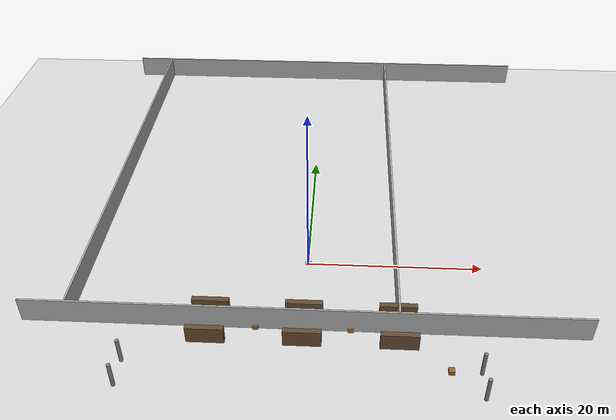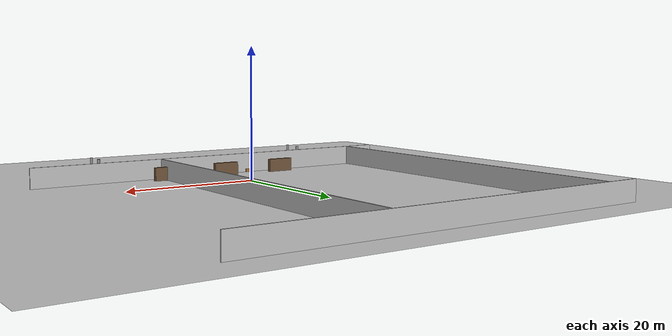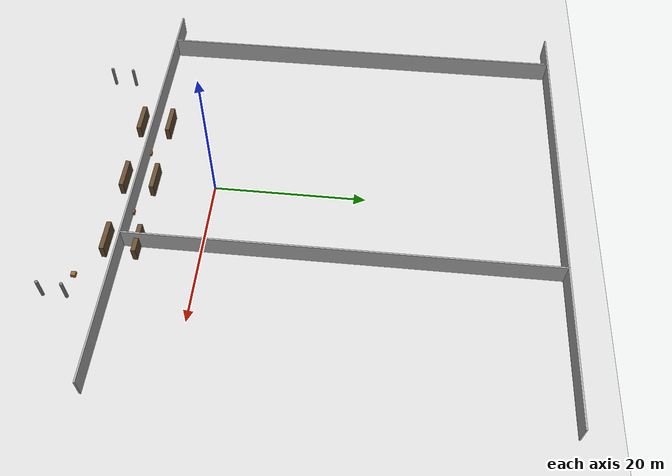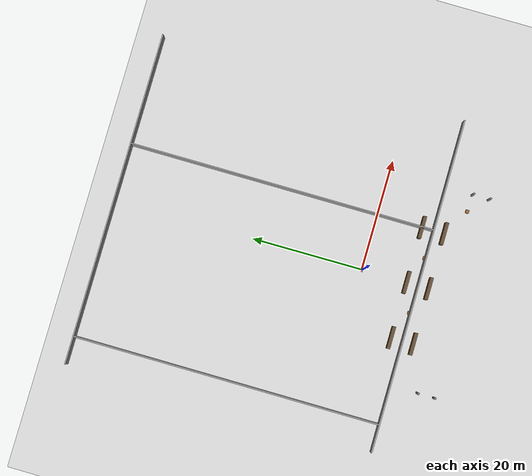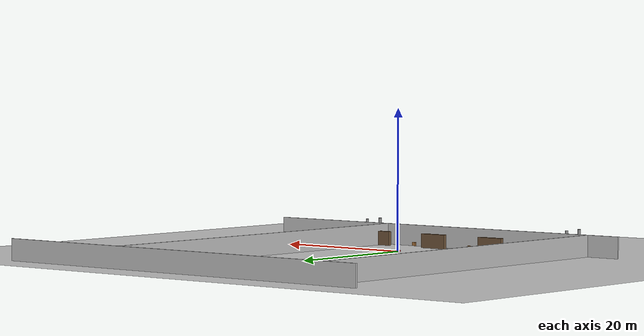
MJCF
<!-- Combined: Differential Drive Robot in Warehouse Environment -->
<mujoco model="robot_in_warehouse">
  <compiler angle="radian" coordinate="local"/>

  <option timestep="0.001" gravity="0 0 -9.81" integrator="RK4"/>

  <default>
    <geom friction="1 0.5 0.5" condim="3"/>
    <joint damping="0.1"/>
    <motor ctrllimited="true" ctrlrange="-10 10"/>
  </default>

  <asset>
    <texture name="floor_tex" type="2d" builtin="checker" width="512" height="512"
             rgb1="0.9 0.9 0.9" rgb2="0.8 0.8 0.8"/>
    <material name="floor_mat" texture="floor_tex" texrepeat="20 20"/>
    <material name="wall_mat" rgba="0.7 0.7 0.7 1"/>
    <material name="shelf_mat" rgba="0.4 0.3 0.2 1"/>
    <material name="box_mat" rgba="0.6 0.4 0.2 1"/>
    <material name="robot_mat" rgba="0.8 0.2 0.2 1"/>
    <material name="wheel_mat" rgba="0.1 0.1 0.1 1"/>
    <material name="lidar_mat" rgba="0.2 0.2 0.8 1"/>
  </asset>

  <worldbody>
    <!-- Floor -->
    <geom name="floor" type="plane" size="50 50 0.1" material="floor_mat"/>

    <!-- Outer walls (enlarged to fit path: start ~(0,0) to end ~(-17,36)) -->
    <body name="north_wall" pos="0 45 1.5">
      <geom type="box" size="30 0.1 1.5" material="wall_mat"/>
    </body>
    <body name="south_wall" pos="0 -10 1.5">
      <geom type="box" size="30 0.1 1.5" material="wall_mat"/>
    </body>
    <body name="east_wall" pos="10 17.5 1.5">
      <geom type="box" size="0.1 27.5 1.5" material="wall_mat"/>
    </body>
    <body name="west_wall" pos="-25 17.5 1.5">
      <geom type="box" size="0.1 27.5 1.5" material="wall_mat"/>
    </body>

    <!-- Shelves moved to -Y half to clear robot path (path goes through +Y) -->
    <body name="shelf_1_1" pos="-10 -8 1">
      <geom type="box" size="2 0.3 1" material="shelf_mat"/>
    </body>
    <body name="shelf_1_2" pos="-10 -12 1">
      <geom type="box" size="2 0.3 1" material="shelf_mat"/>
    </body>

    <body name="shelf_2_1" pos="0 -8 1">
      <geom type="box" size="2 0.3 1" material="shelf_mat"/>
    </body>
    <body name="shelf_2_2" pos="0 -12 1">
      <geom type="box" size="2 0.3 1" material="shelf_mat"/>
    </body>

    <body name="shelf_3_1" pos="10 -8 1">
      <geom type="box" size="2 0.3 1" material="shelf_mat"/>
    </body>
    <body name="shelf_3_2" pos="10 -12 1">
      <geom type="box" size="2 0.3 1" material="shelf_mat"/>
    </body>

    <!-- Boxes moved to -Y half -->
    <body name="box1" pos="-5 -10 0.25">
      <geom type="box" size="0.3 0.3 0.25" material="box_mat"/>
    </body>
    <body name="box2" pos="5 -10 0.25">
      <geom type="box" size="0.3 0.3 0.25" material="box_mat"/>
    </body>
    <body name="box3" pos="15 -15 0.25">
      <geom type="box" size="0.3 0.3 0.25" material="box_mat"/>
    </body>

    <!-- Pillars moved to corners away from path -->
    <body name="pillar_1" pos="-18 -15 1.5">
      <geom type="cylinder" size="0.2 1.5" rgba="0.5 0.5 0.5 1"/>
    </body>
    <body name="pillar_2" pos="18 -15 1.5">
      <geom type="cylinder" size="0.2 1.5" rgba="0.5 0.5 0.5 1"/>
    </body>
    <body name="pillar_3" pos="-18 -18 1.5">
      <geom type="cylinder" size="0.2 1.5" rgba="0.5 0.5 0.5 1"/>
    </body>
    <body name="pillar_4" pos="18 -18 1.5">
      <geom type="cylinder" size="0.2 1.5" rgba="0.5 0.5 0.5 1"/>
    </body>

    <!-- Robot base (chassis) -->
    <body name="robot_base" pos="0 0 0.15">
      <joint name="robot_x" type="slide" axis="1 0 0"/>
      <joint name="robot_y" type="slide" axis="0 1 0"/>
      <joint name="robot_yaw" type="hinge" axis="0 0 1"/>

      <geom name="chassis" type="box" size="0.3 0.2 0.1" material="robot_mat" mass="5"/>

      <site name="imu_site" pos="0 0 0" size="0.02"/>

      <!-- Left wheel -->
      <body name="left_wheel" pos="0 0.22 -0.05">
        <joint name="left_wheel_joint" type="hinge" axis="0 1 0"/>
        <geom name="left_wheel_geom" type="cylinder" size="0.1 0.02"
              material="wheel_mat" mass="0.5" euler="1.5708 0 0"/>
      </body>

      <!-- Right wheel -->
      <body name="right_wheel" pos="0 -0.22 -0.05">
        <joint name="right_wheel_joint" type="hinge" axis="0 1 0"/>
        <geom name="right_wheel_geom" type="cylinder" size="0.1 0.02"
              material="wheel_mat" mass="0.5" euler="1.5708 0 0"/>
      </body>

      <!-- Caster wheel -->
      <body name="caster" pos="0.2 0 -0.08">
        <geom name="caster_geom" type="sphere" size="0.02" mass="0.1"/>
      </body>

      <!-- LiDAR sensor mount -->
      <body name="lidar" pos="0 0 0.15">
        <geom name="lidar_body" type="cylinder" size="0.05 0.03"
              material="lidar_mat" mass="0.3"/>
        <site name="lidar_site" pos="0 0 0.03" size="0.01"/>
      </body>
    </body>
  </worldbody>

  <actuator>
    <velocity name="left_motor" joint="left_wheel_joint" kv="10"/>
    <velocity name="right_motor" joint="right_wheel_joint" kv="10"/>
  </actuator>

  <!-- Start robot at path origin facing path direction (128 deg = 2.234 rad) -->
  <keyframe>
    <key name="path_start" qpos="-0.21 0.28 2.234 0 0"/>
  </keyframe>

  <sensor>
    <accelerometer name="imu_accel" site="imu_site"/>
    <gyro name="imu_gyro" site="imu_site"/>
    <jointvel name="left_wheel_vel" joint="left_wheel_joint"/>
    <jointvel name="right_wheel_vel" joint="right_wheel_joint"/>
  </sensor>
</mujoco>
